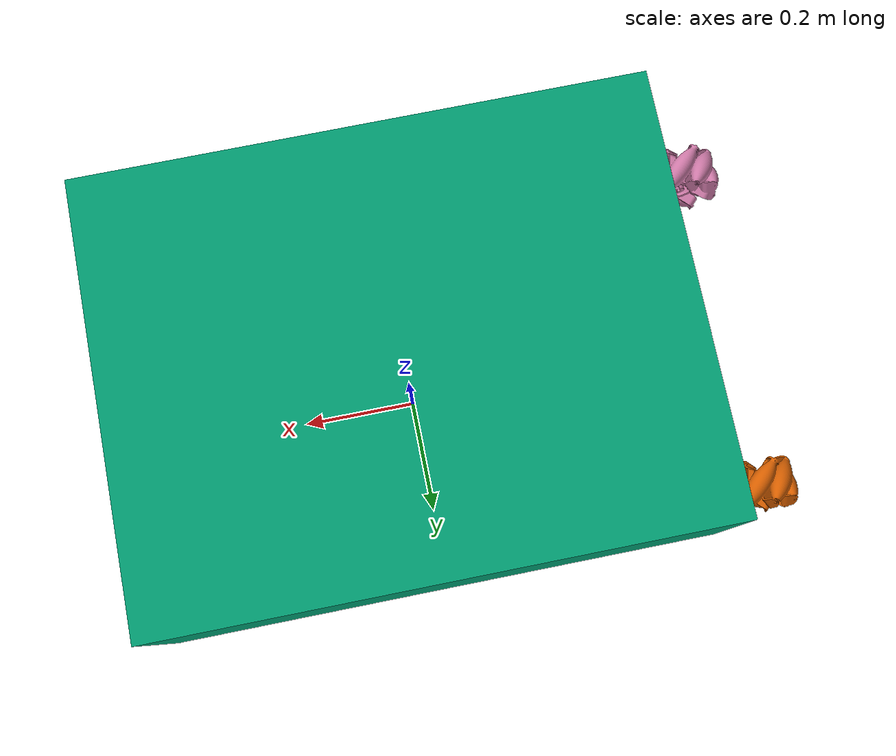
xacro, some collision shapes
<?xml version="1.0"?>
<robot name="mobile_base" xmlns:xacro="http://ros.org/wiki/xacro">
  <xacro:property name="PI" value="3.1415926535897931" />

  <xacro:property name="base_dimensions" value=".9 .7 .3" /> <!-- 35 by 28 by 12 inches-->

  <link name="world" />

  <link name="base_footprint" />

  <joint name="chassis_link_joint" type="fixed">
    <parent link="base_footprint"/>
    <child link="chassis_link" />
  </joint>

  <xacro:property name="chassis_z" value="0.35" />
  <!-- chassis link -->
  <link name="chassis_link">
    <visual>
      <origin xyz="0 0 ${chassis_z}" rpy="0 0 0" />
      <geometry>
        <mesh filename="$(find mobile_base_description)/meshes/Chassis_with_Suspension_fixed_origin.stl" scale="0.001 0.001 0.001"/>
      </geometry>
    </visual>
    <collision>
      <origin xyz="0 0 ${chassis_z}"/>
      <geometry>
        <box size="${base_dimensions}"/>
      </geometry>
    </collision>
    <inertial>
      <!-- Fill in w/ CAD values -->
      <origin xyz="-0.01103 0 0.002" rpy="0 0 0"/>
      <mass value="2.844"/>
      <inertia
        ixx="0.018819942" ixy="0" ixz="-0.000101519"
        iyy="0.057333716" iyz="0"
        izz="0.074201740"/>
    </inertial>
  </link>

  <!-- Attach wheels -->
  <xacro:include filename="$(find mobile_base_description)/urdf/wheel/wheel.xacro" />

  <xacro:wheel_macro index="1" parent="chassis_link" origin=".179898 .28424 ${chassis_z - 0.208}"/>
  <xacro:wheel_macro index="2" parent="chassis_link" origin=".179898 -.28424 ${chassis_z - 0.208}"/>
  <xacro:wheel_macro index="3" parent="chassis_link" origin="-.5436278 .28424 ${chassis_z - 0.208}"/>
  <xacro:wheel_macro index="4" parent="chassis_link" origin="-.5436278 -.28424 ${chassis_z - 0.208}"/>

  <!-- Load gazebo file-->
  <xacro:include filename="$(find mobile_base_description)/urdf/base/model.gazebo" />

  <!-- Load world prismatic joints-->
  <xacro:macro name="prismatic_joint_macro" params="axis_name xyz parent child">
    <joint name="base_${axis_name}_joint" type="prismatic">
      <origin xyz="0 0 0" rpy="0 0 0" />
      <parent link="${parent}"/>
      <child link="${child}" />
      <axis xyz="${xyz}"/>
      <limit effort="1000" lower="-100" upper="100" velocity="2"/>
    </joint>

    <xacro:if value="${child != 'base_footprint'}">
      <link name="base_${axis_name}_link">
        <inertial>
        <origin xyz="0 0 0" rpy="0 0 0" />
        <mass value="1" />
        <inertia
          ixx="1.0" ixy="0.0" ixz="0.0"
          iyy="1.0" iyz="0.0"
          izz="1.0" />
        </inertial>
      </link>
    </xacro:if>

    <transmission name="base_${axis_name}_transmission">
      <type>transmission_interface/SimpleTransmission</type>
      <joint name="base_${axis_name}_joint">
          <hardwareInterface>hardware_interface/EffortJointInterface</hardwareInterface>
      </joint>
      <actuator name="base_${axis_name}_joint_motor">
          <mechanicalReduction>1</mechanicalReduction>
      </actuator>
    </transmission>
  </xacro:macro>

  <xacro:prismatic_joint_macro axis_name="x" xyz="1 0 0" parent="world" child="base_x_link"/>
  <xacro:prismatic_joint_macro axis_name="y" xyz="0 1 0" parent="base_x_link" child="base_y_link"/>
  <xacro:prismatic_joint_macro axis_name="z" xyz="0 0 1" parent="base_y_link" child="base_z_link"/>

  <!-- Load world rotation joint -->
  <joint name="base_z_rotation_joint" type="continuous">
    <origin xyz="0 0 0" rpy="0 0 0" />
    <parent link="base_z_link"/>
    <child link="base_footprint" />
    <axis xyz="0 0 1"/>
    <limit effort="1000" lower="-10" upper="10" velocity="2"/>
  </joint>

  <transmission name="base_z_rotation_transmission">
    <type>transmission_interface/SimpleTransmission</type>
    <joint name="base_z_rotation_joint">
        <hardwareInterface>hardware_interface/EffortJointInterface</hardwareInterface>
    </joint>
    <actuator name="base_z_rotation_joint_motor">
        <mechanicalReduction>1</mechanicalReduction>
    </actuator>
  </transmission>

</robot>

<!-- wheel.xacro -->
<robot name="mobile_base" xmlns:xacro="http://ros.org/wiki/xacro">
  <xacro:property name="wheel_radius" value=".0763" />
  <xacro:property name="wheel_width" value=".0855" />

  <xacro:macro name="wheel_macro" params="index parent origin"> <!-- include boolean if left or right wheel-->
    <joint name="wheel_${index}_joint" type="continuous">
      <origin xyz="${origin}" rpy="0 0 0" /><!-- TODO: figure out origin of wheel-->
      <parent link="${parent}"/>
      <child link="wheel_${index}" />
      <axis xyz="1 0 0"/>
    </joint>

    <link name="wheel_${index}">
      <visual>
        <origin xyz="0 0 0" rpy="0 0 ${PI/2}" />
        <geometry>
          <mesh filename="$(find mobile_base_description)/meshes/WPI_Mecanum_Wheel_fixed_origin.stl" scale="0.001 0.001 0.001"/>
        </geometry>
      </visual>

      <collision>

        <origin xyz="0 0 0" rpy="0 0 ${PI/2}"/>
        <geometry>
          <cylinder radius="${wheel_radius}" length="${wheel_width}"/>
        </geometry>
      </collision>
      <inertial>
        <origin xyz="0.0 0.0 0.0" rpy="0 0 0"/>
        <mass value="0.3844"/>
        <!-- Inertia based on cylinder - get from CAD -->
        <inertia
          ixx="0.000324824" ixy="0" ixz="0"
          iyy="0.000480000" iyz="0"
          izz="0.000324824"/>
      </inertial>
    </link>

      <!-- Load Mecanum Wheel Motors -->

    <gazebo reference="wheel_${index}">
      <mu1 value="0.0"/>
      <mu2 value="0.0"/>
    </gazebo>
  </xacro:macro>
</robot>
